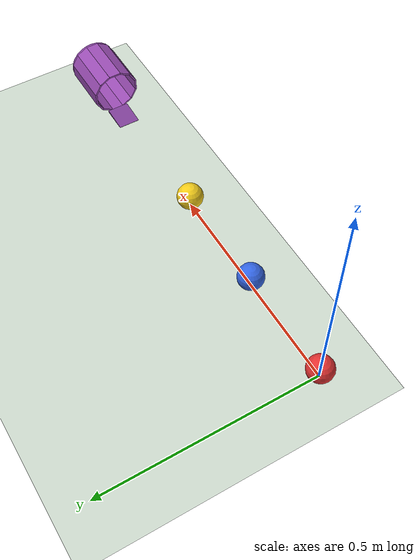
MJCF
<mujoco model="three_balls_into_cup">
  <option timestep="0.002"/>

  <visual>
    <global offwidth="1280" offheight="720"/>
  </visual>

  <worldbody>
    <light name="sun" pos="0.5 -0.5 2" dir="0 0.3 -1" directional="true"/>
    <geom name="floor" type="plane" size="3 3 0.1" rgba="0.8 0.85 0.8 1" friction="0.8 0.005 0.0001" priority="1"/>

    <body name="ball1" pos="0 0 0.03">
      <freejoint name="ball1_free"/>
      <geom name="ball1_geom" type="sphere" size="0.03" rgba="0.9 0.2 0.2 1" friction="0.05 0.005 0.0001" solref="0.015 0.3"/>
    </body>

    <body name="ball2" pos="0.25 0 0.03">
      <freejoint name="ball2_free"/>
      <geom name="ball2_geom" type="sphere" size="0.03" rgba="0.2 0.4 0.9 1" friction="0.05 0.005 0.0001" solref="0.015 0.3"/>
    </body>

    <body name="ball3" pos="0.5 0 0.03">
      <freejoint name="ball3_free"/>
      <geom name="ball3_geom" type="sphere" size="0.03" rgba="0.95 0.8 0.1 1" friction="0.05 0.005 0.0001" solref="0.015 0.3"/>
    </body>

    <!-- Cup lying on its side, mouth facing -x, axis at height 0.054, fixed to the world.
         Inner radius 0.05, wall thickness 0.004, interior spans x = 0.85 .. 0.97. -->
    <body name="cup" pos="0.91 0 0.054">
      <geom name="cup_wall_000" type="box" size="0.06 0.0145 0.002" pos="0 0 0.052" euler="0 0 0" rgba="0.6 0.3 0.7 1" priority="1"/>
      <geom name="cup_wall_030" type="box" size="0.06 0.0145 0.002" pos="0 -0.026 0.04503" euler="30 0 0" rgba="0.6 0.3 0.7 1" priority="1"/>
      <geom name="cup_wall_060" type="box" size="0.06 0.0145 0.002" pos="0 -0.04503 0.026" euler="60 0 0" rgba="0.6 0.3 0.7 1" priority="1"/>
      <geom name="cup_wall_090" type="box" size="0.06 0.0145 0.002" pos="0 -0.052 0" euler="90 0 0" rgba="0.6 0.3 0.7 1" priority="1"/>
      <geom name="cup_wall_120" type="box" size="0.06 0.0145 0.002" pos="0 -0.04503 -0.026" euler="120 0 0" rgba="0.6 0.3 0.7 1" priority="1"/>
      <geom name="cup_wall_150" type="box" size="0.06 0.0145 0.002" pos="0 -0.026 -0.04503" euler="150 0 0" rgba="0.6 0.3 0.7 1" priority="1"/>
      <geom name="cup_wall_180" type="box" size="0.06 0.0145 0.002" pos="0 0 -0.052" euler="180 0 0" rgba="0.6 0.3 0.7 1" priority="1"/>
      <geom name="cup_wall_210" type="box" size="0.06 0.0145 0.002" pos="0 0.026 -0.04503" euler="210 0 0" rgba="0.6 0.3 0.7 1" priority="1"/>
      <geom name="cup_wall_240" type="box" size="0.06 0.0145 0.002" pos="0 0.04503 -0.026" euler="240 0 0" rgba="0.6 0.3 0.7 1" priority="1"/>
      <geom name="cup_wall_270" type="box" size="0.06 0.0145 0.002" pos="0 0.052 0" euler="270 0 0" rgba="0.6 0.3 0.7 1" priority="1"/>
      <geom name="cup_wall_300" type="box" size="0.06 0.0145 0.002" pos="0 0.04503 0.026" euler="300 0 0" rgba="0.6 0.3 0.7 1" priority="1"/>
      <geom name="cup_wall_330" type="box" size="0.06 0.0145 0.002" pos="0 0.026 0.04503" euler="330 0 0" rgba="0.6 0.3 0.7 1" priority="1"/>
      <geom name="cup_bottom" type="cylinder" size="0.054 0.003" pos="0.063 0 0" euler="0 90 0" rgba="0.5 0.25 0.6 1" priority="1"/>
      <!-- shallow lip ramp: top surface rises from z=0 at x=0.79 to z=0.004 at the mouth (x=0.85) -->
      <geom name="cup_lip_ramp" type="box" size="0.0301 0.025 0.002" pos="-0.0899 0 -0.054" euler="0 -3.81 0" rgba="0.5 0.25 0.6 1" priority="1"/>
    </body>
  </worldbody>

  <keyframe>
    <key name="start" qpos="0 0 0.03 1 0 0 0  0.25 0 0.03 1 0 0 0  0.5 0 0.03 1 0 0 0" qvel="1.5 0 0 0 50 0  0 0 0 0 0 0  0 0 0 0 0 0"/>
  </keyframe>
</mujoco>
